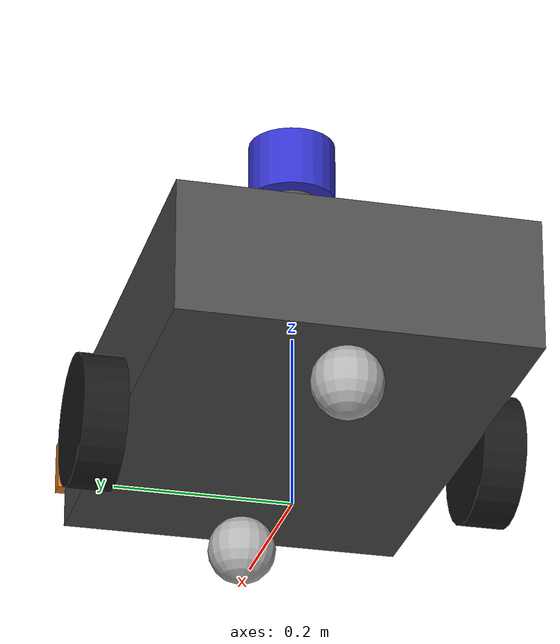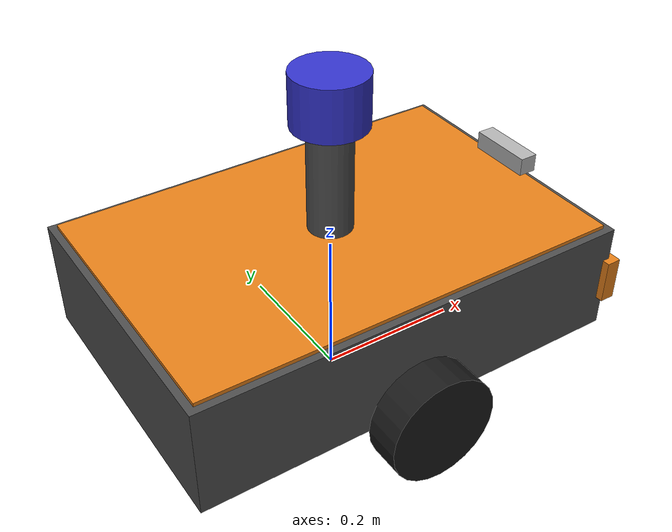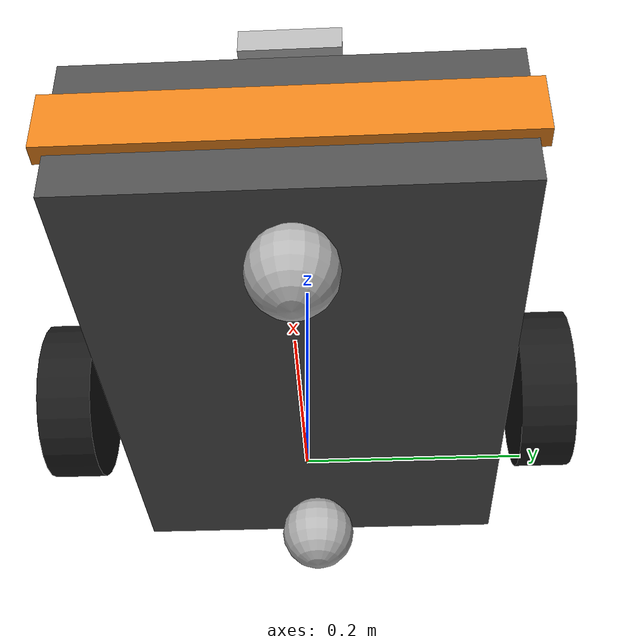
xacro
<?xml version="1.0"?>
<robot xmlns:xacro="http://www.ros.org/wiki/xacro" name="amr">

  <!-- ==================== Material Definitions (RViz) ==================== -->
  <material name="dark_grey">
    <color rgba="0.3 0.3 0.3 1.0"/>
  </material>
  <material name="black">
    <color rgba="0.1 0.1 0.1 1.0"/>
  </material>
  <material name="silver">
    <color rgba="0.7 0.7 0.7 1.0"/>
  </material>
  <material name="blue">
    <color rgba="0.2 0.2 0.8 1.0"/>
  </material>
  <material name="orange">
    <color rgba="0.9 0.5 0.1 1.0"/>
  </material>

  <!-- ==================== Properties ==================== -->
  <xacro:property name="chassis_length" value="0.6"/>
  <xacro:property name="chassis_width"  value="0.4"/>
  <xacro:property name="chassis_height" value="0.15"/>
  <xacro:property name="chassis_mass"   value="20.0"/>

  <xacro:property name="top_plate_height" value="0.005"/>

  <xacro:property name="wheel_radius" value="0.075"/>
  <xacro:property name="wheel_width"  value="0.05"/>
  <xacro:property name="wheel_mass"   value="1.0"/>

  <xacro:property name="caster_radius" value="0.04"/>
  <xacro:property name="caster_mass"   value="0.3"/>

  <!-- ==================== Inertia Macros ==================== -->
  <xacro:macro name="box_inertia" params="m x y z">
    <inertial>
      <mass value="${m}"/>
      <inertia ixx="${(m/12.0)*(y*y+z*z)}" ixy="0" ixz="0"
               iyy="${(m/12.0)*(x*x+z*z)}" iyz="0"
               izz="${(m/12.0)*(x*x+y*y)}"/>
    </inertial>
  </xacro:macro>

  <xacro:macro name="cylinder_inertia" params="m r h">
    <inertial>
      <mass value="${m}"/>
      <inertia ixx="${(m/12.0)*(3*r*r+h*h)}" ixy="0" ixz="0"
               iyy="${(m/12.0)*(3*r*r+h*h)}" iyz="0"
               izz="${(m/2.0)*(r*r)}"/>
    </inertial>
  </xacro:macro>

  <xacro:macro name="sphere_inertia" params="m r">
    <inertial>
      <mass value="${m}"/>
      <inertia ixx="${(2.0/5.0)*m*r*r}" ixy="0" ixz="0"
               iyy="${(2.0/5.0)*m*r*r}" iyz="0"
               izz="${(2.0/5.0)*m*r*r}"/>
    </inertial>
  </xacro:macro>

  <!-- ==================== Drive Wheel Macro ==================== -->
  <xacro:macro name="drive_wheel" params="prefix y_reflect">
    <link name="${prefix}_wheel_link">
      <visual>
        <geometry>
          <cylinder radius="${wheel_radius}" length="${wheel_width}"/>
        </geometry>
        <material name="black"/>
      </visual>
      <collision>
        <geometry>
          <cylinder radius="${wheel_radius}" length="${wheel_width}"/>
        </geometry>
      </collision>
      <xacro:cylinder_inertia m="${wheel_mass}" r="${wheel_radius}" h="${wheel_width}"/>
    </link>

    <joint name="${prefix}_wheel_joint" type="continuous">
      <parent link="base_link"/>
      <child link="${prefix}_wheel_link"/>
      <origin xyz="0 ${y_reflect * (chassis_width/2.0 + wheel_width/2.0)} ${-chassis_height/2.0}" rpy="${-pi/2.0} 0 0"/>
      <axis xyz="0 0 1"/>
      <dynamics damping="0.01" friction="0.1"/>
    </joint>

    <gazebo reference="${prefix}_wheel_link">
      <material>Gazebo/FlatBlack</material>
      <mu1>1.0</mu1>
      <mu2>1.0</mu2>
    </gazebo>
  </xacro:macro>

  <!-- ==================== Caster Macro ==================== -->
  <xacro:macro name="caster_wheel" params="prefix x_offset">
    <link name="${prefix}_caster_link">
      <visual>
        <geometry>
          <sphere radius="${caster_radius}"/>
        </geometry>
        <material name="silver"/>
      </visual>
      <collision>
        <geometry>
          <sphere radius="${caster_radius}"/>
        </geometry>
      </collision>
      <xacro:sphere_inertia m="${caster_mass}" r="${caster_radius}"/>
    </link>

    <joint name="${prefix}_caster_joint" type="fixed">
      <parent link="base_link"/>
      <child link="${prefix}_caster_link"/>
      <origin xyz="${x_offset} 0 ${-(wheel_radius + chassis_height/2.0 - caster_radius)}" rpy="0 0 0"/>
    </joint>

    <gazebo reference="${prefix}_caster_link">
      <material>Gazebo/Grey</material>
      <mu1>0.001</mu1>
      <mu2>0.001</mu2>
      <kp>1000000.0</kp>
      <kd>100.0</kd>
    </gazebo>
  </xacro:macro>

  <!-- ==================== Base Footprint ==================== -->
  <link name="base_footprint"/>

  <joint name="base_footprint_joint" type="fixed">
    <parent link="base_footprint"/>
    <child link="base_link"/>
    <origin xyz="0 0 ${wheel_radius + chassis_height/2.0}" rpy="0 0 0"/>
  </joint>

  <!-- ==================== Base Link (Chassis) ==================== -->
  <link name="base_link">
    <visual>
      <geometry>
        <box size="${chassis_length} ${chassis_width} ${chassis_height}"/>
      </geometry>
      <material name="dark_grey"/>
    </visual>
    <collision>
      <geometry>
        <box size="${chassis_length} ${chassis_width} ${chassis_height}"/>
      </geometry>
    </collision>
    <xacro:box_inertia m="${chassis_mass}" x="${chassis_length}" y="${chassis_width}" z="${chassis_height}"/>
  </link>

  <gazebo reference="base_link">
    <material>Gazebo/FlatBlack</material>
  </gazebo>

  <!-- ==================== Top Cover Plate ==================== -->
  <link name="top_plate_link">
    <visual>
      <geometry>
        <box size="${chassis_length - 0.02} ${chassis_width - 0.02} ${top_plate_height}"/>
      </geometry>
      <material name="orange"/>
    </visual>
    <collision>
      <geometry>
        <box size="${chassis_length - 0.02} ${chassis_width - 0.02} ${top_plate_height}"/>
      </geometry>
    </collision>
    <xacro:box_inertia m="0.5" x="${chassis_length - 0.02}" y="${chassis_width - 0.02}" z="${top_plate_height}"/>
  </link>

  <joint name="top_plate_joint" type="fixed">
    <parent link="base_link"/>
    <child link="top_plate_link"/>
    <origin xyz="0 0 ${chassis_height/2.0 + top_plate_height/2.0}" rpy="0 0 0"/>
  </joint>

  <gazebo reference="top_plate_link">
    <material>Gazebo/Orange</material>
  </gazebo>

  <!-- ==================== Front Bumper (visual indicator of forward direction) ==================== -->
  <link name="front_bumper_link">
    <visual>
      <geometry>
        <box size="0.02 ${chassis_width + 0.02} 0.06"/>
      </geometry>
      <material name="orange"/>
    </visual>
    <collision>
      <geometry>
        <box size="0.02 ${chassis_width + 0.02} 0.06"/>
      </geometry>
    </collision>
    <xacro:box_inertia m="0.2" x="0.02" y="${chassis_width + 0.02}" z="0.06"/>
  </link>

  <joint name="front_bumper_joint" type="fixed">
    <parent link="base_link"/>
    <child link="front_bumper_link"/>
    <origin xyz="${chassis_length/2.0} 0 0" rpy="0 0 0"/>
  </joint>

  <gazebo reference="front_bumper_link">
    <material>Gazebo/Orange</material>
  </gazebo>

  <!-- ==================== Drive Wheels ==================== -->
  <xacro:drive_wheel prefix="left"  y_reflect="1"/>
  <xacro:drive_wheel prefix="right" y_reflect="-1"/>

  <!-- ==================== Caster Wheels ==================== -->
  <xacro:caster_wheel prefix="front" x_offset="${chassis_length/2.0 - caster_radius - 0.02}"/>
  <xacro:caster_wheel prefix="rear"  x_offset="${-(chassis_length/2.0 - caster_radius - 0.02)}"/>

  <!-- ==================== Sensor Tower (raises LiDAR above chassis) ==================== -->
  <link name="sensor_tower_link">
    <visual>
      <geometry>
        <cylinder radius="0.03" length="0.15"/>
      </geometry>
      <material name="dark_grey"/>
    </visual>
    <collision>
      <geometry>
        <cylinder radius="0.03" length="0.15"/>
      </geometry>
    </collision>
    <xacro:cylinder_inertia m="0.3" r="0.03" h="0.15"/>
  </link>

  <joint name="sensor_tower_joint" type="fixed">
    <parent link="base_link"/>
    <child link="sensor_tower_link"/>
    <origin xyz="0 0 ${chassis_height/2.0 + 0.075}" rpy="0 0 0"/>
  </joint>

  <gazebo reference="sensor_tower_link">
    <material>Gazebo/FlatBlack</material>
  </gazebo>

  <!-- ==================== Velodyne VLP-16 LiDAR ==================== -->
  <link name="velodyne_link">
    <visual>
      <geometry>
        <cylinder radius="0.05" length="0.07"/>
      </geometry>
      <material name="blue"/>
    </visual>
    <collision>
      <geometry>
        <cylinder radius="0.05" length="0.07"/>
      </geometry>
    </collision>
    <xacro:cylinder_inertia m="0.8" r="0.05" h="0.07"/>
  </link>

  <joint name="velodyne_joint" type="fixed">
    <parent link="base_link"/>
    <child link="velodyne_link"/>
    <origin xyz="0 0 ${chassis_height/2.0 + 0.15 + 0.035}" rpy="0 0 0"/>
  </joint>

  <gazebo reference="velodyne_link">
    <material>Gazebo/Blue</material>
    <sensor name="velodyne" type="gpu_ray">
      <always_on>true</always_on>
      <update_rate>10</update_rate>
      <visualize>false</visualize>
      <ray>
        <scan>
          <horizontal>
            <samples>1800</samples>
            <resolution>1</resolution>
            <min_angle>${-pi}</min_angle>
            <max_angle>${pi}</max_angle>
          </horizontal>
          <vertical>
            <samples>16</samples>
            <resolution>1</resolution>
            <min_angle>${-15.0*pi/180.0}</min_angle>
            <max_angle>${15.0*pi/180.0}</max_angle>
          </vertical>
        </scan>
        <range>
          <min>0.3</min>
          <max>100.0</max>
          <resolution>0.001</resolution>
        </range>
        <noise>
          <type>gaussian</type>
          <mean>0.0</mean>
          <stddev>0.003</stddev>
        </noise>
      </ray>
      <plugin name="gazebo_ros_velodyne" filename="libgazebo_ros_ray_sensor.so">
        <ros>
          <remapping>~/out:=/velodyne_points</remapping>
        </ros>
        <output_type>sensor_msgs/PointCloud2</output_type>
        <frame_name>velodyne_link</frame_name>
      </plugin>
    </sensor>
  </gazebo>

  <!-- ==================== RealSense D435 Depth Camera ==================== -->
  <link name="camera_link">
    <visual>
      <geometry>
        <box size="0.025 0.09 0.025"/>
      </geometry>
      <material name="silver"/>
    </visual>
    <collision>
      <geometry>
        <box size="0.025 0.09 0.025"/>
      </geometry>
    </collision>
    <xacro:box_inertia m="0.072" x="0.025" y="0.09" z="0.025"/>
  </link>

  <joint name="camera_joint" type="fixed">
    <parent link="base_link"/>
    <child link="camera_link"/>
    <origin xyz="${chassis_length/2.0 - 0.01} 0 ${chassis_height/2.0 + 0.02}" rpy="0 0 0"/>
  </joint>

  <!-- Optical frame (ROS convention: z forward, x right, y down) -->
  <link name="camera_optical_frame"/>

  <joint name="camera_optical_joint" type="fixed">
    <parent link="camera_link"/>
    <child link="camera_optical_frame"/>
    <origin xyz="0 0 0" rpy="${-pi/2.0} 0 ${-pi/2.0}"/>
  </joint>

  <gazebo reference="camera_link">
    <material>Gazebo/White</material>
    <sensor name="realsense_d435" type="depth">
      <always_on>true</always_on>
      <update_rate>30</update_rate>
      <visualize>false</visualize>
      <camera>
        <horizontal_fov>1.2112</horizontal_fov>
        <image>
          <width>640</width>
          <height>480</height>
          <format>R8G8B8</format>
        </image>
        <clip>
          <near>0.1</near>
          <far>10.0</far>
        </clip>
        <noise>
          <type>gaussian</type>
          <mean>0.0</mean>
          <stddev>0.005</stddev>
        </noise>
      </camera>
      <plugin name="gazebo_ros_camera" filename="libgazebo_ros_camera.so">
        <ros>
          <remapping>~/image_raw:=/camera/image_raw</remapping>
          <remapping>~/depth/image_raw:=/camera/depth/image_raw</remapping>
          <remapping>~/camera_info:=/camera/camera_info</remapping>
        </ros>
        <camera_name>camera</camera_name>
        <frame_name>camera_optical_frame</frame_name>
        <hack_baseline>0.07</hack_baseline>
        <min_depth>0.1</min_depth>
        <max_depth>10.0</max_depth>
      </plugin>
    </sensor>
  </gazebo>

  <!-- ==================== IMU Sensor ==================== -->
  <link name="imu_link">
    <visual>
      <geometry>
        <box size="0.02 0.02 0.01"/>
      </geometry>
      <material name="blue"/>
    </visual>
    <collision>
      <geometry>
        <box size="0.02 0.02 0.01"/>
      </geometry>
    </collision>
    <xacro:box_inertia m="0.05" x="0.02" y="0.02" z="0.01"/>
  </link>

  <joint name="imu_joint" type="fixed">
    <parent link="base_link"/>
    <child link="imu_link"/>
    <origin xyz="0 0 0" rpy="0 0 0"/>
  </joint>

  <gazebo reference="imu_link">
    <sensor name="imu_sensor" type="imu">
      <always_on>true</always_on>
      <update_rate>100</update_rate>
      <visualize>false</visualize>
      <plugin name="gazebo_ros_imu" filename="libgazebo_ros_imu_sensor.so">
        <ros>
          <remapping>~/out:=/imu</remapping>
        </ros>
        <frame_name>imu_link</frame_name>
        <initial_orientation_as_reference>false</initial_orientation_as_reference>
      </plugin>
      <imu>
        <angular_velocity>
          <x><noise type="gaussian"><mean>0.0</mean><stddev>0.0002</stddev></noise></x>
          <y><noise type="gaussian"><mean>0.0</mean><stddev>0.0002</stddev></noise></y>
          <z><noise type="gaussian"><mean>0.0</mean><stddev>0.0002</stddev></noise></z>
        </angular_velocity>
        <linear_acceleration>
          <x><noise type="gaussian"><mean>0.0</mean><stddev>0.017</stddev></noise></x>
          <y><noise type="gaussian"><mean>0.0</mean><stddev>0.017</stddev></noise></y>
          <z><noise type="gaussian"><mean>0.0</mean><stddev>0.017</stddev></noise></z>
        </linear_acceleration>
      </imu>
    </sensor>
  </gazebo>

  <!-- ==================== Differential Drive Plugin ==================== -->
  <gazebo>
    <plugin name="diff_drive_controller" filename="libgazebo_ros_diff_drive.so">
      <ros>
        <remapping>cmd_vel:=/cmd_vel</remapping>
        <remapping>odom:=/odom</remapping>
      </ros>

      <update_rate>50</update_rate>

      <left_joint>left_wheel_joint</left_joint>
      <right_joint>right_wheel_joint</right_joint>

      <wheel_separation>0.45</wheel_separation>
      <wheel_diameter>0.15</wheel_diameter>

      <max_wheel_torque>10.0</max_wheel_torque>
      <max_wheel_acceleration>2.0</max_wheel_acceleration>

      <command_topic>cmd_vel</command_topic>
      <odometry_topic>odom</odometry_topic>
      <odometry_frame>odom</odometry_frame>
      <robot_base_frame>base_footprint</robot_base_frame>

      <publish_odom>true</publish_odom>
      <publish_odom_tf>true</publish_odom_tf>
      <publish_wheel_tf>true</publish_wheel_tf>

      <odometry_source>world</odometry_source>
    </plugin>
  </gazebo>

</robot>
